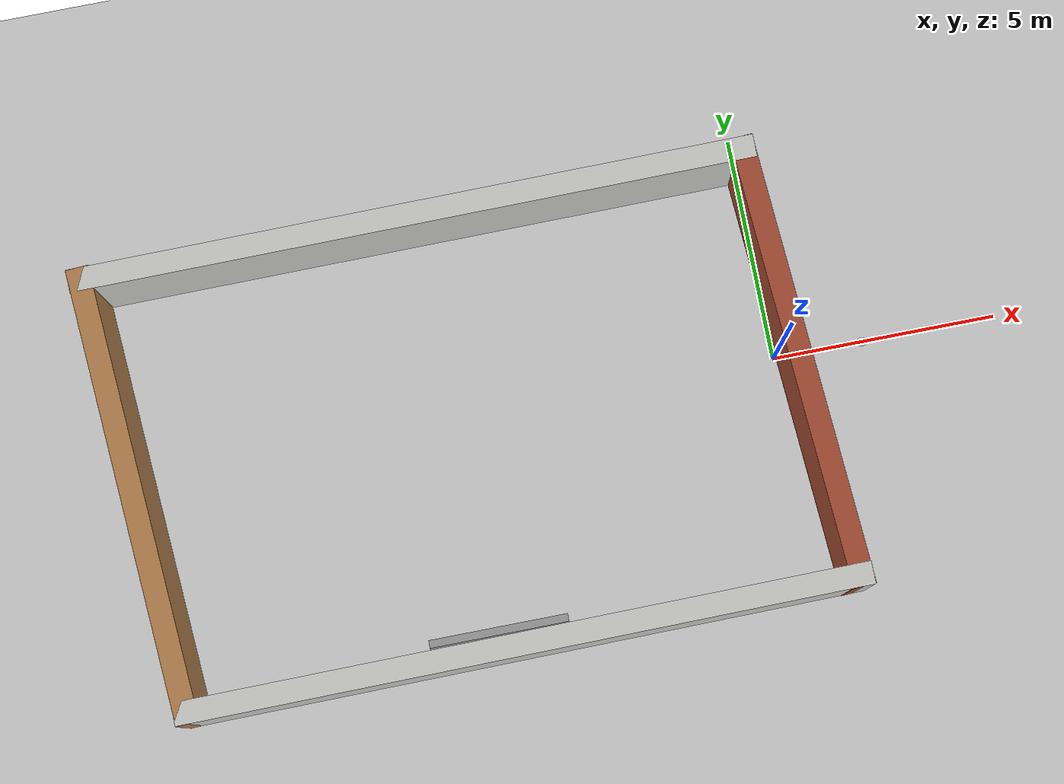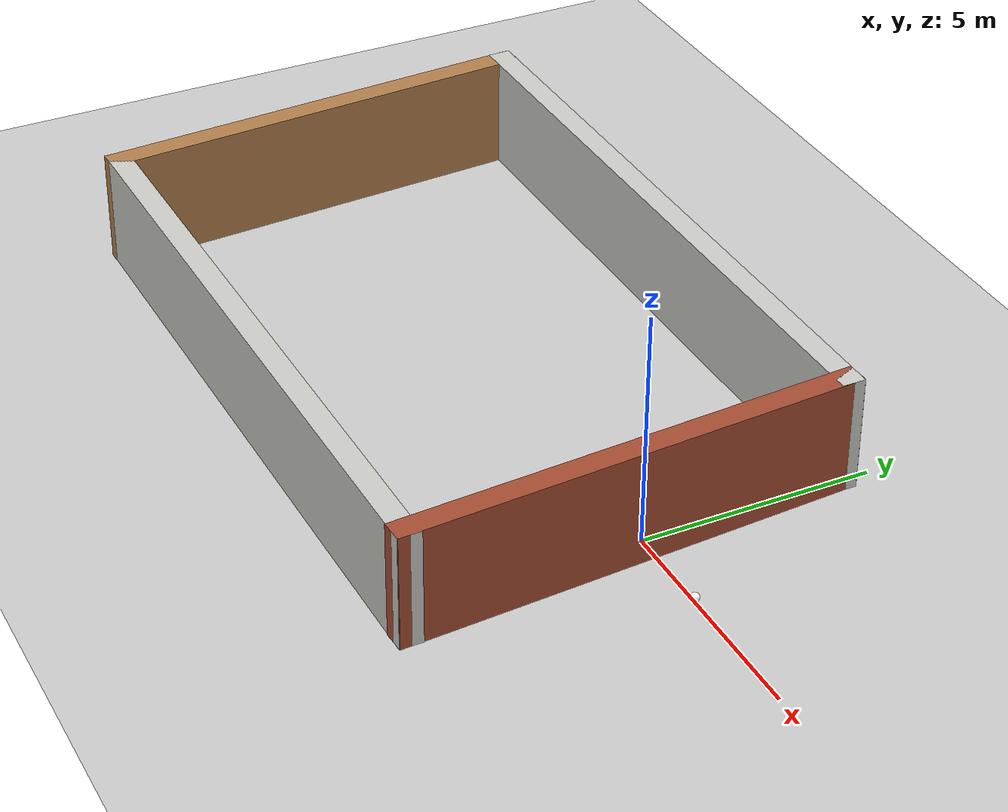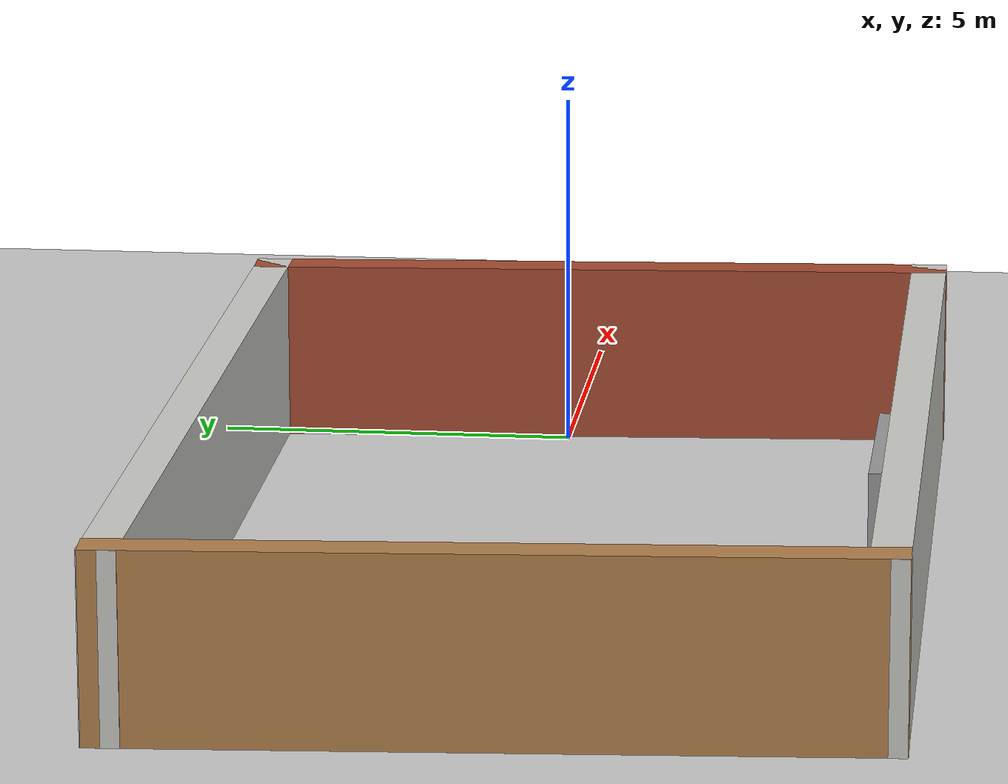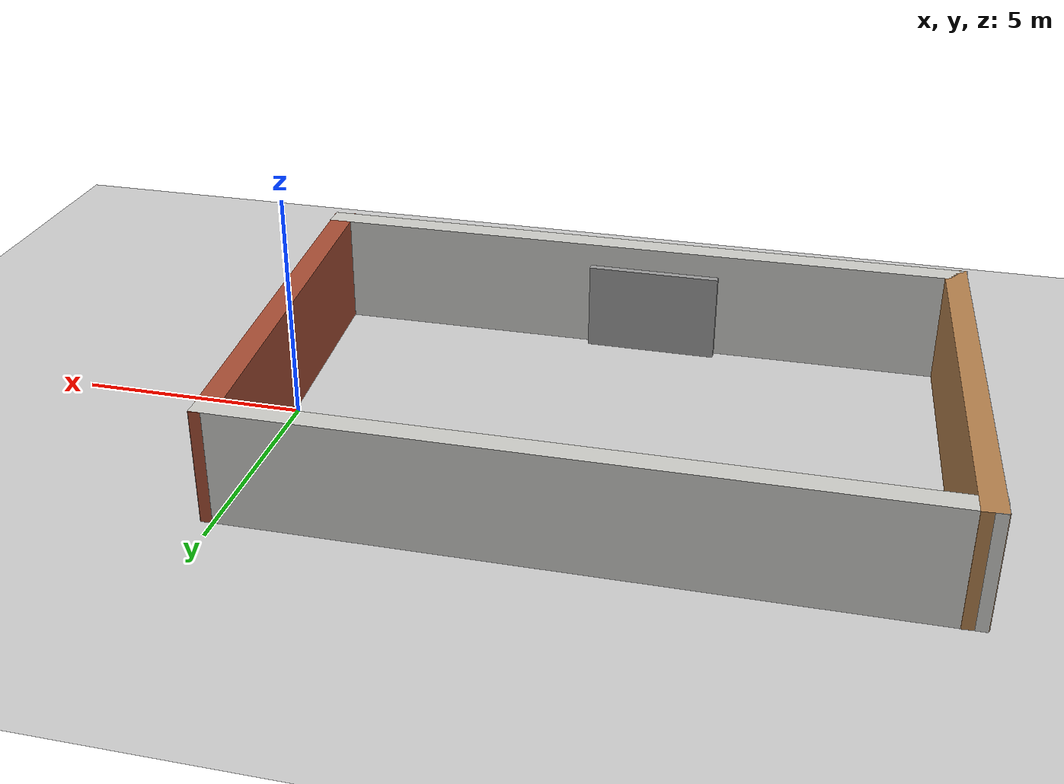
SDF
<sdf version="1.7">
 <world name="default">
  <light name="sun" type="directional">
   <pose>0 0 10 0 -0 0</pose>
   <diffuse>0.8 0.8 0.8 1</diffuse>
   <specular>0.2 0.2 0.2 1</specular>
   <attenuation>
    <range>1000</range>
    <constant>0.9</constant>
    <linear>0.01</linear>
    <quadratic>0.001</quadratic>
   </attenuation>
   <direction>-0.5 0.1 -0.9</direction>
   <spot><inner_angle>0</inner_angle><outer_angle>0</outer_angle><falloff>0</falloff></spot>
  </light>
  <plugin name="hello_plugin" filename="libhello.so"/>
  <model name="ground_plane">
   <static>1</static>
   <link name="link">
    <collision name="collision">
     <geometry><plane><normal>0 0 1</normal><size>100 100</size></plane></geometry>
     <surface>
      <contact><collide_bitmask>65535</collide_bitmask></contact>
      <friction><ode><mu>100</mu><mu2>50</mu2></ode></friction>
     </surface>
    </collision>
    <visual name="visual">
     <cast_shadows>0</cast_shadows>
     <geometry><plane><normal>0 0 1</normal><size>100 100</size></plane></geometry>
     <material>
      <script><uri>file://media/materials/scripts/gazebo.material</uri><name>Gazebo/Grey</name></script>
     </material>
    </visual>
   </link>
  </model>
  <gravity>0 0 -9.8</gravity>
  <magnetic_field>6e-06 2.3e-05 -4.2e-05</magnetic_field>
  <atmosphere type="adiabatic"/>
  <physics type="ode">
   <max_step_size>0.001</max_step_size>
   <real_time_factor>1</real_time_factor>
   <real_time_update_rate>1000</real_time_update_rate>
  </physics>
  <scene><ambient>0.4 0.4 0.4 1</ambient><background>0.7 0.7 0.7 1</background><shadows>1</shadows></scene>
  <spherical_coordinates>
   <surface_model>EARTH_WGS84</surface_model>
   <latitude_deg>0</latitude_deg>
   <longitude_deg>0</longitude_deg>
   <elevation>0</elevation>
   <heading_deg>0</heading_deg>
  </spherical_coordinates>
  <model name="building">
   <pose>-4.23894 -0.48774 0 0 -0 0</pose>
   <link name="Door_0">
    <collision name="Door_0_Collision">
     <geometry><box><size>3 0.17 2</size></box></geometry>
     <pose>0 0 1 0 -0 0</pose>
    </collision>
    <visual name="Door_0_Visual">
     <pose>0 0 1 0 -0 0</pose>
     <geometry><box><size>3 0.17 2</size></box></geometry>
     <material>
      <script><uri>file://media/materials/scripts/gazebo.material</uri><name>Gazebo/Grey</name></script>
     </material>
    </visual>
    <pose>-2.85103 -4.35705 0 0 -0 0</pose>
   </link>
   <link name="Wall_0">
    <collision name="Wall_0_Collision">
     <geometry><box><size>10.0149 0.5 2.5</size></box></geometry>
     <pose>0 0 1.25 0 -0 0</pose>
    </collision>
    <visual name="Wall_0_Visual">
     <pose>0 0 1.25 0 -0 0</pose>
     <geometry><box><size>10.0149 0.5 2.5</size></box></geometry>
     <material>
      <script><uri>file://media/materials/scripts/gazebo.material</uri><name>Gazebo/Wood</name></script>
      <ambient>0.996078 0.47451 0.0196078 1</ambient>
     </material>
     <meta><layer>0</layer></meta>
    </visual>
    <pose>-9.92047 -0.048023 0 0 -0 1.63485</pose>
   </link>
   <link name="Wall_1">
    <collision name="Wall_1_Collision">
     <geometry><box><size>15 0.5 2.5</size></box></geometry>
     <pose>0 0 1.25 0 -0 0</pose>
    </collision>
    <visual name="Wall_1_Visual">
     <pose>0 0 1.25 0 -0 0</pose>
     <geometry><box><size>15 0.5 2.5</size></box></geometry>
     <material>
      <script><uri>file://media/materials/scripts/gazebo.material</uri><name>Gazebo/CeilingTiled</name></script>
      <ambient>0.996078 0.47451 0.0196078 1</ambient>
     </material>
     <meta><layer>0</layer></meta>
    </visual>
    <pose>-2.97516 4.74766 0 0 -0 0.006622</pose>
   </link>
   <link name="Wall_2">
    <collision name="Wall_2_Collision">
     <geometry><box><size>10 0.5 2.5</size></box></geometry>
     <pose>0 0 1.25 0 -0 0</pose>
    </collision>
    <visual name="Wall_2_Visual">
     <pose>0 0 1.25 0 -0 0</pose>
     <geometry><box><size>10 0.5 2.5</size></box></geometry>
     <material>
      <script><uri>file://media/materials/scripts/gazebo.material</uri><name>Gazebo/Bricks</name></script>
      <ambient>0.996078 0.47451 0.0196078 1</ambient>
     </material>
     <meta><layer>0</layer></meta>
    </visual>
    <pose>4.57916 0.055441 0 0 -0 -1.50665</pose>
   </link>
   <link name="Wall_3">
    <collision name="Wall_3_Collision">
     <geometry><box><size>15 0.5 2.5</size></box></geometry>
     <pose>0 0 1.25 0 -0 0</pose>
    </collision>
    <visual name="Wall_3_Visual">
     <pose>0 0 1.25 0 -0 0</pose>
     <geometry><box><size>15 0.5 2.5</size></box></geometry>
     <material>
      <script><uri>file://media/materials/scripts/gazebo.material</uri><name>Gazebo/CeilingTiled</name></script>
      <ambient>0.435294 0.796078 0.67451 1</ambient>
     </material>
     <meta><layer>0</layer></meta>
    </visual>
    <pose>-2.36615 -4.74024 0 0 -0 -3.13394</pose>
   </link>
   <static>1</static>
  </model>
  <model name="white_ball">
   <link name="link">
    <inertial>
     <mass>0.1</mass>
     <inertia><ixx>0.0001</ixx><iyy>0.0001</iyy><izz>0.0001</izz><ixy>0</ixy><ixz>0</ixz><iyz>0</iyz></inertia>
    </inertial>
    <collision name="collision"><geometry><sphere><radius>0.1</radius></sphere></geometry></collision>
    <visual name="visual">
     <geometry><sphere><radius>0.1</radius></sphere></geometry>
     <material><ambient>1 1 1 1</ambient><diffuse>1 1 1 1</diffuse></material>
    </visual>
   </link>
   <static>0</static>
   <pose>2 0 0.1 0 -0 0</pose>
  </model>
 </world>
</sdf>
